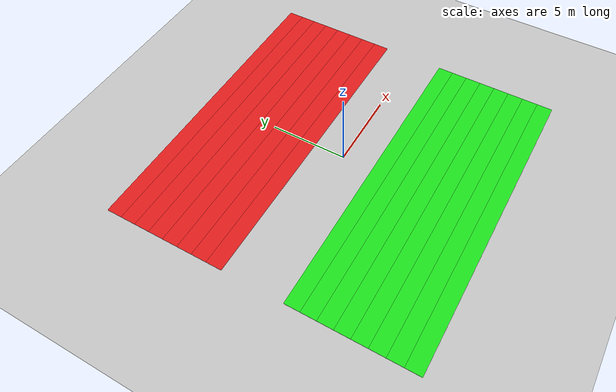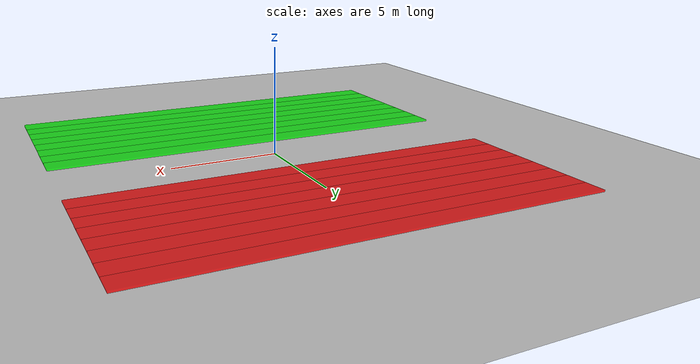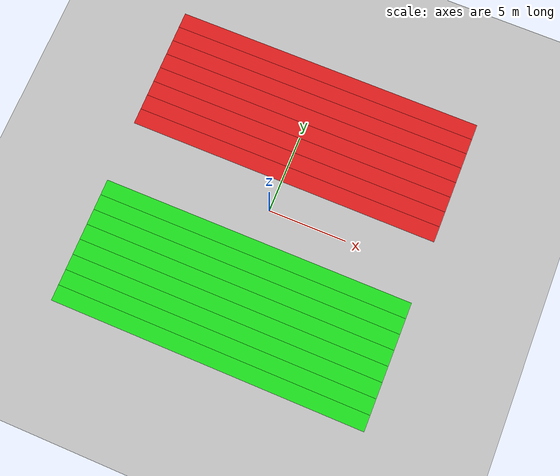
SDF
<?xml version="1.0" ?>
<sdf version='1.9'>
  <world name='car_world'>
    <physics name='1ms' type='ignored'>
      <max_step_size>0.001</max_step_size>
      <real_time_factor>1</real_time_factor>
      <real_time_update_rate>1000</real_time_update_rate>
    </physics>
    <plugin name='ignition::gazebo::systems::Physics' filename='libignition-gazebo-physics-system.so'/>
    <plugin name='ignition::gazebo::systems::UserCommands' filename='libignition-gazebo-user-commands-system.so'/>
    <plugin name='ignition::gazebo::systems::SceneBroadcaster' filename='libignition-gazebo-scene-broadcaster-system.so'/>
    <gravity>0 0 -9.8</gravity>
    <magnetic_field>6e-06 2.3e-05 -4.2e-05</magnetic_field>
    <atmosphere type='adiabatic'/>
    <scene>
      <ambient>0.4 0.4 0.4 1</ambient>
      <background>0.7 0.7 0.7 1</background>
      <shadows>true</shadows>
    </scene>
    <model name='ground_plane'>
      <static>true</static>
      <link name='link'>
        <collision name='collision'>
          <geometry>
            <plane>
              <normal>0 0 1</normal>
              <size>1 1</size>
            </plane>
          </geometry>
          <surface>
            <friction>
              <ode/>
            </friction>
            <bounce/>
            <contact/>
          </surface>
        </collision>
        <visual name='visual'>
          <geometry>
            <plane>
              <normal>0 0 1</normal>
              <size>100 100</size>
            </plane>
          </geometry>
          <material>
            <ambient>0.8 0.8 0.8 1</ambient>
            <diffuse>0.8 0.8 0.8 1</diffuse>
            <specular>0.8 0.8 0.8 1</specular>
          </material>
        </visual>
        <pose>0 0 0 0 -0 0</pose>
        <inertial>
          <pose>0 0 0 0 -0 0</pose>
          <mass>1</mass>
          <inertia>
            <ixx>1</ixx>
            <ixy>0</ixy>
            <ixz>0</ixz>
            <iyy>1</iyy>
            <iyz>0</iyz>
            <izz>1</izz>
          </inertia>
        </inertial>
        <enable_wind>false</enable_wind>
      </link>
      <pose>0 0 0 0 -0 0</pose>
      <self_collide>false</self_collide>
    </model>
    <model name='planks'>
      <pose>0 0 0 0 -0 0</pose>
      <link name='plank-10'>
        <pose>0 -9.5 0 0 -0 0</pose>
        <inertial>
          <mass>12000</mass>
          <inertia>
            <ixx>1010</ixx>
            <ixy>0</ixy>
            <ixz>0</ixz>
            <iyy>400010</iyy>
            <iyz>0</iyz>
            <izz>401000</izz>
          </inertia>
          <pose>0 0 0 0 -0 0</pose>
        </inertial>
        <visual name='visual'>
          <geometry>
            <box>
              <size>20 1 0.1</size>
            </box>
          </geometry>
          <material>
            <ambient>0 1 0 0.8</ambient>
            <diffuse>0 1 0 0.8</diffuse>
            <specular>0 1 0 0.8</specular>
          </material>
        </visual>
        <collision name='collision'>
          <geometry>
            <box>
              <size>20 1 0.1</size>
            </box>
          </geometry>
          <surface>
            <friction>
              <ode>
                <mu>100</mu>
                <mu2>100</mu2>
              </ode>
            </friction>
            <bounce/>
            <contact/>
          </surface>
        </collision>
        <enable_wind>false</enable_wind>
      </link>
      <link name='plank-9'>
        <pose>0 -8.5 0 0 -0 0</pose>
        <inertial>
          <mass>12000</mass>
          <inertia>
            <ixx>1010</ixx>
            <ixy>0</ixy>
            <ixz>0</ixz>
            <iyy>400010</iyy>
            <iyz>0</iyz>
            <izz>401000</izz>
          </inertia>
          <pose>0 0 0 0 -0 0</pose>
        </inertial>
        <visual name='visual'>
          <geometry>
            <box>
              <size>20 1 0.1</size>
            </box>
          </geometry>
          <material>
            <ambient>0 1 0 0.8</ambient>
            <diffuse>0 1 0 0.8</diffuse>
            <specular>0 1 0 0.8</specular>
          </material>
        </visual>
        <collision name='collision'>
          <geometry>
            <box>
              <size>20 1 0.1</size>
            </box>
          </geometry>
          <surface>
            <friction>
              <ode>
                <mu>100</mu>
                <mu2>100</mu2>
              </ode>
            </friction>
            <bounce/>
            <contact/>
          </surface>
        </collision>
        <enable_wind>false</enable_wind>
      </link>
      <link name='plank-8'>
        <pose>0 -7.5 0 0 -0 0</pose>
        <inertial>
          <mass>12000</mass>
          <inertia>
            <ixx>1010</ixx>
            <ixy>0</ixy>
            <ixz>0</ixz>
            <iyy>400010</iyy>
            <iyz>0</iyz>
            <izz>401000</izz>
          </inertia>
          <pose>0 0 0 0 -0 0</pose>
        </inertial>
        <visual name='visual'>
          <geometry>
            <box>
              <size>20 1 0.1</size>
            </box>
          </geometry>
          <material>
            <ambient>0 1 0 0.8</ambient>
            <diffuse>0 1 0 0.8</diffuse>
            <specular>0 1 0 0.8</specular>
          </material>
        </visual>
        <collision name='collision'>
          <geometry>
            <box>
              <size>20 1 0.1</size>
            </box>
          </geometry>
          <surface>
            <friction>
              <ode>
                <mu>100</mu>
                <mu2>100</mu2>
              </ode>
            </friction>
            <bounce/>
            <contact/>
          </surface>
        </collision>
        <enable_wind>false</enable_wind>
      </link>
      <link name='plank-7'>
        <pose>0 -6.5 0 0 -0 0</pose>
        <inertial>
          <mass>12000</mass>
          <inertia>
            <ixx>1010</ixx>
            <ixy>0</ixy>
            <ixz>0</ixz>
            <iyy>400010</iyy>
            <iyz>0</iyz>
            <izz>401000</izz>
          </inertia>
          <pose>0 0 0 0 -0 0</pose>
        </inertial>
        <visual name='visual'>
          <geometry>
            <box>
              <size>20 1 0.1</size>
            </box>
          </geometry>
          <material>
            <ambient>0 1 0 0.8</ambient>
            <diffuse>0 1 0 0.8</diffuse>
            <specular>0 1 0 0.8</specular>
          </material>
        </visual>
        <collision name='collision'>
          <geometry>
            <box>
              <size>20 1 0.1</size>
            </box>
          </geometry>
          <surface>
            <friction>
              <ode>
                <mu>100</mu>
                <mu2>100</mu2>
              </ode>
            </friction>
            <bounce/>
            <contact/>
          </surface>
        </collision>
        <enable_wind>false</enable_wind>
      </link>
      <link name='plank-6'>
        <pose>0 -5.5 0 0 -0 0</pose>
        <inertial>
          <mass>12000</mass>
          <inertia>
            <ixx>1010</ixx>
            <ixy>0</ixy>
            <ixz>0</ixz>
            <iyy>400010</iyy>
            <iyz>0</iyz>
            <izz>401000</izz>
          </inertia>
          <pose>0 0 0 0 -0 0</pose>
        </inertial>
        <visual name='visual'>
          <geometry>
            <box>
              <size>20 1 0.1</size>
            </box>
          </geometry>
          <material>
            <ambient>0 1 0 0.8</ambient>
            <diffuse>0 1 0 0.8</diffuse>
            <specular>0 1 0 0.8</specular>
          </material>
        </visual>
        <collision name='collision'>
          <geometry>
            <box>
              <size>20 1 0.1</size>
            </box>
          </geometry>
          <surface>
            <friction>
              <ode>
                <mu>100</mu>
                <mu2>100</mu2>
              </ode>
            </friction>
            <bounce/>
            <contact/>
          </surface>
        </collision>
        <enable_wind>false</enable_wind>
      </link>
      <link name='plank-5'>
        <pose>0 -4.5 0 0 -0 0</pose>
        <inertial>
          <mass>12000</mass>
          <inertia>
            <ixx>1010</ixx>
            <ixy>0</ixy>
            <ixz>0</ixz>
            <iyy>400010</iyy>
            <iyz>0</iyz>
            <izz>401000</izz>
          </inertia>
          <pose>0 0 0 0 -0 0</pose>
        </inertial>
        <visual name='visual'>
          <geometry>
            <box>
              <size>20 1 0.1</size>
            </box>
          </geometry>
          <material>
            <ambient>0 1 0 0.8</ambient>
            <diffuse>0 1 0 0.8</diffuse>
            <specular>0 1 0 0.8</specular>
          </material>
        </visual>
        <collision name='collision'>
          <geometry>
            <box>
              <size>20 1 0.1</size>
            </box>
          </geometry>
          <surface>
            <friction>
              <ode>
                <mu>100</mu>
                <mu2>100</mu2>
              </ode>
            </friction>
            <bounce/>
            <contact/>
          </surface>
        </collision>
        <enable_wind>false</enable_wind>
      </link>
      <link name='plank-4'>
        <pose>0 -3.5 0 0 -0 0</pose>
        <inertial>
          <mass>12000</mass>
          <inertia>
            <ixx>1010</ixx>
            <ixy>0</ixy>
            <ixz>0</ixz>
            <iyy>400010</iyy>
            <iyz>0</iyz>
            <izz>401000</izz>
          </inertia>
          <pose>0 0 0 0 -0 0</pose>
        </inertial>
        <visual name='visual'>
          <geometry>
            <box>
              <size>20 1 0.1</size>
            </box>
          </geometry>
          <material>
            <ambient>0 1 0 0.8</ambient>
            <diffuse>0 1 0 0.8</diffuse>
            <specular>0 1 0 0.8</specular>
          </material>
        </visual>
        <collision name='collision'>
          <geometry>
            <box>
              <size>20 1 0.1</size>
            </box>
          </geometry>
          <surface>
            <friction>
              <ode>
                <mu>100</mu>
                <mu2>100</mu2>
              </ode>
            </friction>
            <bounce/>
            <contact/>
          </surface>
        </collision>
        <enable_wind>false</enable_wind>
      </link>
      <link name='plank-3'>
        <pose>0 -2.5 0 0 -0 0</pose>
        <inertial>
          <mass>12000</mass>
          <inertia>
            <ixx>1010</ixx>
            <ixy>0</ixy>
            <ixz>0</ixz>
            <iyy>400010</iyy>
            <iyz>0</iyz>
            <izz>401000</izz>
          </inertia>
          <pose>0 0 0 0 -0 0</pose>
        </inertial>
        <visual name='visual'>
          <geometry>
            <box>
              <size>20 1 0.1</size>
            </box>
          </geometry>
          <material>
            <ambient>0 1 0 0.8</ambient>
            <diffuse>0 1 0 0.8</diffuse>
            <specular>0 1 0 0.8</specular>
          </material>
        </visual>
        <collision name='collision'>
          <geometry>
            <box>
              <size>20 1 0.1</size>
            </box>
          </geometry>
          <surface>
            <friction>
              <ode>
                <mu>100</mu>
                <mu2>100</mu2>
              </ode>
            </friction>
            <bounce/>
            <contact/>
          </surface>
        </collision>
        <enable_wind>false</enable_wind>
      </link>
      <link name='plank3'>
        <pose>0 2.5 0 0 -0 0</pose>
        <inertial>
          <mass>12000</mass>
          <inertia>
            <ixx>1010</ixx>
            <ixy>0</ixy>
            <ixz>0</ixz>
            <iyy>400010</iyy>
            <iyz>0</iyz>
            <izz>401000</izz>
          </inertia>
          <pose>0 0 0 0 -0 0</pose>
        </inertial>
        <visual name='visual'>
          <geometry>
            <box>
              <size>20 1 0.1</size>
            </box>
          </geometry>
          <material>
            <ambient>1 0 0 0.8</ambient>
            <diffuse>1 0 0 0.8</diffuse>
            <specular>1 0 0 0.8</specular>
          </material>
        </visual>
        <collision name='collision'>
          <geometry>
            <box>
              <size>20 1 0.1</size>
            </box>
          </geometry>
          <surface>
            <friction>
              <ode>
                <mu>50</mu>
                <mu2>50</mu2>
              </ode>
            </friction>
            <bounce/>
            <contact/>
          </surface>
        </collision>
        <enable_wind>false</enable_wind>
      </link>
      <link name='plank4'>
        <pose>0 3.5 0 0 -0 0</pose>
        <inertial>
          <mass>12000</mass>
          <inertia>
            <ixx>1010</ixx>
            <ixy>0</ixy>
            <ixz>0</ixz>
            <iyy>400010</iyy>
            <iyz>0</iyz>
            <izz>401000</izz>
          </inertia>
          <pose>0 0 0 0 -0 0</pose>
        </inertial>
        <visual name='visual'>
          <geometry>
            <box>
              <size>20 1 0.1</size>
            </box>
          </geometry>
          <material>
            <ambient>1 0 0 0.8</ambient>
            <diffuse>1 0 0 0.8</diffuse>
            <specular>1 0 0 0.8</specular>
          </material>
        </visual>
        <collision name='collision'>
          <geometry>
            <box>
              <size>20 1 0.1</size>
            </box>
          </geometry>
          <surface>
            <friction>
              <ode>
                <mu>50</mu>
                <mu2>50</mu2>
              </ode>
            </friction>
            <bounce/>
            <contact/>
          </surface>
        </collision>
        <enable_wind>false</enable_wind>
      </link>
      <link name='plank5'>
        <pose>0 4.5 0 0 -0 0</pose>
        <inertial>
          <mass>12000</mass>
          <inertia>
            <ixx>1010</ixx>
            <ixy>0</ixy>
            <ixz>0</ixz>
            <iyy>400010</iyy>
            <iyz>0</iyz>
            <izz>401000</izz>
          </inertia>
          <pose>0 0 0 0 -0 0</pose>
        </inertial>
        <visual name='visual'>
          <geometry>
            <box>
              <size>20 1 0.1</size>
            </box>
          </geometry>
          <material>
            <ambient>1 0 0 0.8</ambient>
            <diffuse>1 0 0 0.8</diffuse>
            <specular>1 0 0 0.8</specular>
          </material>
        </visual>
        <collision name='collision'>
          <geometry>
            <box>
              <size>20 1 0.1</size>
            </box>
          </geometry>
          <surface>
            <friction>
              <ode>
                <mu>50</mu>
                <mu2>50</mu2>
              </ode>
            </friction>
            <bounce/>
            <contact/>
          </surface>
        </collision>
        <enable_wind>false</enable_wind>
      </link>
      <link name='plank6'>
        <pose>0 5.5 0 0 -0 0</pose>
        <inertial>
          <mass>12000</mass>
          <inertia>
            <ixx>1010</ixx>
            <ixy>0</ixy>
            <ixz>0</ixz>
            <iyy>400010</iyy>
            <iyz>0</iyz>
            <izz>401000</izz>
          </inertia>
          <pose>0 0 0 0 -0 0</pose>
        </inertial>
        <visual name='visual'>
          <geometry>
            <box>
              <size>20 1 0.1</size>
            </box>
          </geometry>
          <material>
            <ambient>1 0 0 0.8</ambient>
            <diffuse>1 0 0 0.8</diffuse>
            <specular>1 0 0 0.8</specular>
          </material>
        </visual>
        <collision name='collision'>
          <geometry>
            <box>
              <size>20 1 0.1</size>
            </box>
          </geometry>
          <surface>
            <friction>
              <ode>
                <mu>50</mu>
                <mu2>50</mu2>
              </ode>
            </friction>
            <bounce/>
            <contact/>
          </surface>
        </collision>
        <enable_wind>false</enable_wind>
      </link>
      <link name='plank7'>
        <pose>0 6.5 0 0 -0 0</pose>
        <inertial>
          <mass>12000</mass>
          <inertia>
            <ixx>1010</ixx>
            <ixy>0</ixy>
            <ixz>0</ixz>
            <iyy>400010</iyy>
            <iyz>0</iyz>
            <izz>401000</izz>
          </inertia>
          <pose>0 0 0 0 -0 0</pose>
        </inertial>
        <visual name='visual'>
          <geometry>
            <box>
              <size>20 1 0.1</size>
            </box>
          </geometry>
          <material>
            <ambient>1 0 0 0.8</ambient>
            <diffuse>1 0 0 0.8</diffuse>
            <specular>1 0 0 0.8</specular>
          </material>
        </visual>
        <collision name='collision'>
          <geometry>
            <box>
              <size>20 1 0.1</size>
            </box>
          </geometry>
          <surface>
            <friction>
              <ode>
                <mu>50</mu>
                <mu2>50</mu2>
              </ode>
            </friction>
            <bounce/>
            <contact/>
          </surface>
        </collision>
        <enable_wind>false</enable_wind>
      </link>
      <link name='plank8'>
        <pose>0 7.5 0 0 -0 0</pose>
        <inertial>
          <mass>12000</mass>
          <inertia>
            <ixx>1010</ixx>
            <ixy>0</ixy>
            <ixz>0</ixz>
            <iyy>400010</iyy>
            <iyz>0</iyz>
            <izz>401000</izz>
          </inertia>
          <pose>0 0 0 0 -0 0</pose>
        </inertial>
        <visual name='visual'>
          <geometry>
            <box>
              <size>20 1 0.1</size>
            </box>
          </geometry>
          <material>
            <ambient>1 0 0 0.8</ambient>
            <diffuse>1 0 0 0.8</diffuse>
            <specular>1 0 0 0.8</specular>
          </material>
        </visual>
        <collision name='collision'>
          <geometry>
            <box>
              <size>20 1 0.1</size>
            </box>
          </geometry>
          <surface>
            <friction>
              <ode>
                <mu>50</mu>
                <mu2>50</mu2>
              </ode>
            </friction>
            <bounce/>
            <contact/>
          </surface>
        </collision>
        <enable_wind>false</enable_wind>
      </link>
      <link name='plank9'>
        <pose>0 8.5 0 0 -0 0</pose>
        <inertial>
          <mass>12000</mass>
          <inertia>
            <ixx>1010</ixx>
            <ixy>0</ixy>
            <ixz>0</ixz>
            <iyy>400010</iyy>
            <iyz>0</iyz>
            <izz>401000</izz>
          </inertia>
          <pose>0 0 0 0 -0 0</pose>
        </inertial>
        <visual name='visual'>
          <geometry>
            <box>
              <size>20 1 0.1</size>
            </box>
          </geometry>
          <material>
            <ambient>1 0 0 0.8</ambient>
            <diffuse>1 0 0 0.8</diffuse>
            <specular>1 0 0 0.8</specular>
          </material>
        </visual>
        <collision name='collision'>
          <geometry>
            <box>
              <size>20 1 0.1</size>
            </box>
          </geometry>
          <surface>
            <friction>
              <ode>
                <mu>50</mu>
                <mu2>50</mu2>
              </ode>
            </friction>
            <bounce/>
            <contact/>
          </surface>
        </collision>
        <enable_wind>false</enable_wind>
      </link>
      <link name='plank10'>
        <pose>0 9.5 0 0 -0 0</pose>
        <inertial>
          <mass>12000</mass>
          <inertia>
            <ixx>1010</ixx>
            <ixy>0</ixy>
            <ixz>0</ixz>
            <iyy>400010</iyy>
            <iyz>0</iyz>
            <izz>401000</izz>
          </inertia>
          <pose>0 0 0 0 -0 0</pose>
        </inertial>
        <visual name='visual'>
          <geometry>
            <box>
              <size>20 1 0.1</size>
            </box>
          </geometry>
          <material>
            <ambient>1 0 0 0.8</ambient>
            <diffuse>1 0 0 0.8</diffuse>
            <specular>1 0 0 0.8</specular>
          </material>
        </visual>
        <collision name='collision'>
          <geometry>
            <box>
              <size>20 1 0.1</size>
            </box>
          </geometry>
          <surface>
            <friction>
              <ode>
                <mu>50</mu>
                <mu2>50</mu2>
              </ode>
            </friction>
            <bounce/>
            <contact/>
          </surface>
        </collision>
        <enable_wind>false</enable_wind>
      </link>
      <static>false</static>
      <self_collide>false</self_collide>
    </model>
    <light name='sun' type='directional'>
      <pose>0 0 10 0 -0 0</pose>
      <cast_shadows>true</cast_shadows>
      <intensity>1</intensity>
      <direction>-0.5 0.1 -0.9</direction>
      <diffuse>0.8 0.8 0.8 1</diffuse>
      <specular>0.2 0.2 0.2 1</specular>
      <attenuation>
        <range>1000</range>
        <linear>0.01</linear>
        <constant>0.90000000000000002</constant>
        <quadratic>0.001</quadratic>
      </attenuation>
      <spot>
        <inner_angle>0</inner_angle>
        <outer_angle>0</outer_angle>
        <falloff>0</falloff>
      </spot>
    </light>
  </world>
</sdf>
